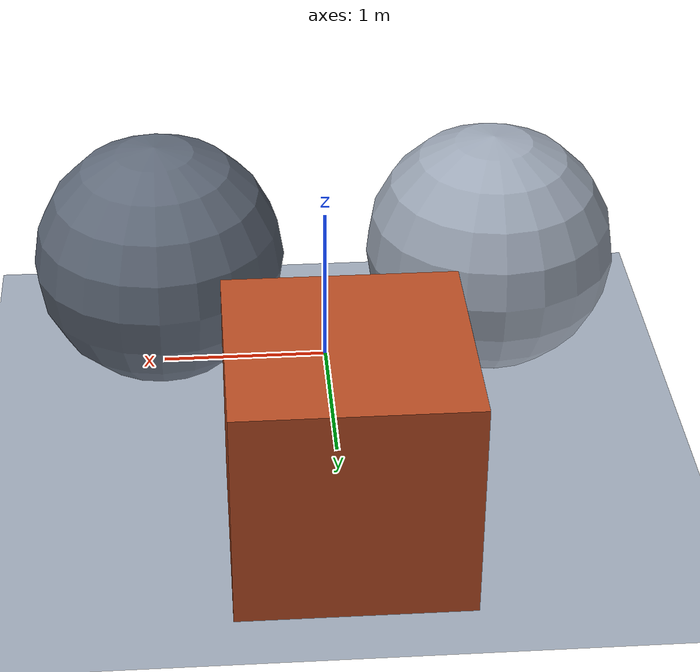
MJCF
<mujoco model="image_light">
  <visual>
    <headlight active="0"/>
    <rgba haze="0.08 0.10 0.13 1"/>
  </visual>
  <asset>
    <texture name="studio" type="cube" builtin="gradient" width="64" height="384"
             rgb1="1.0 0.32 0.08" rgb2="0.04 0.20 0.80"/>
    <material name="matte" rgba="0.62 0.66 0.72 1" specular="0.15" shininess="0.2"/>
    <material name="gloss" rgba="0.38 0.42 0.48 1" specular="0.9" shininess="0.9"/>
    <material name="orange" rgba="0.72 0.30 0.14 1" specular=".45" shininess=".55"/>
  </asset>
  <worldbody>
    <light name="studio_environment" type="image" texture="studio" intensity="5000"/>
    <geom name="ground" type="plane" size="4 4 .05" material="matte"/>
    <geom name="matte_sphere" type="sphere" pos="-1 0 .75" size=".75" material="matte"/>
    <geom name="gloss_sphere" type="sphere" pos="1 0 .75" size=".75" material="gloss"/>
    <geom name="box" type="box" pos="0 1.8 .65" size=".65 .65 .65" material="orange"/>
  </worldbody>
</mujoco>
